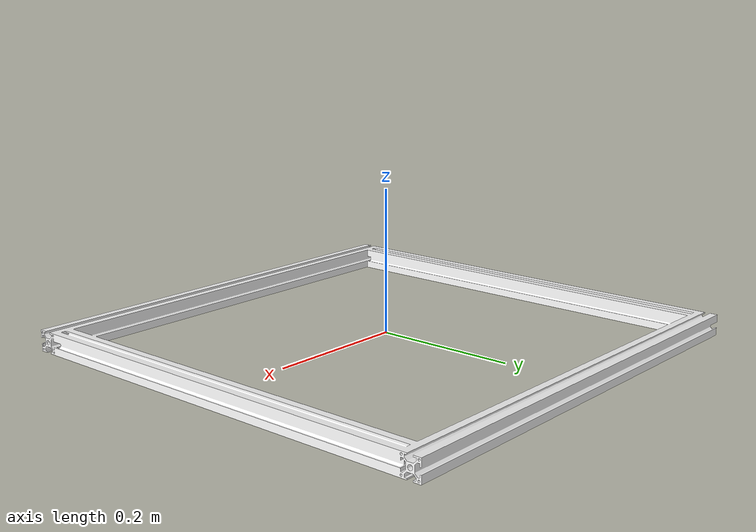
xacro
<?xml version="1.0" encoding="utf-8"?>
<robot
  name="ROS_Module_Assembly_Four_Wheel_v1">

      <link    name="base_link"/>

  <link    name="base_footprint"/>

  <joint    name="base_joint"    type="fixed">
    <origin      xyz="0 0 0"      rpy="1.5706 0 0" />
    <parent      link="base_link" />
    <child       link="chassis_link" />
   </joint>

  <joint    name="footprint_joint"    type="fixed">
    <origin      xyz="0 0 0"      rpy="0 0 0" />
    <child       link="base_link" />
    <parent      link="base_footprint" />
   </joint>

  <link
    name="chassis_link">
    <inertial>
      <origin
        xyz="0 0 0"
        rpy="0 0 0" />
      <mass
        value="1" />
      <inertia
        ixx="1"
        ixy="0"
        ixz="0"
        iyy="1"
        iyz="0"
        izz="1" />
    </inertial>
    <visual>
      <origin
        xyz="0 0 0"
        rpy="0 0 0" />
      <geometry>
        <mesh
          filename="package://ROS_Module_Assembly_Four_Wheel_v1/meshes/chassis_link.STL" />
      </geometry>
      <material
        name="">
        <color
          rgba="1 1 1 1" />
      </material>
    </visual>
    <collision>
      <origin
        xyz="0 0 0"
        rpy="0 0 0" />
      <geometry>
        <mesh
          filename="package://ROS_Module_Assembly_Four_Wheel_v1/meshes/chassis_link.STL" />
      </geometry>
    </collision>
  </link>
</robot>
